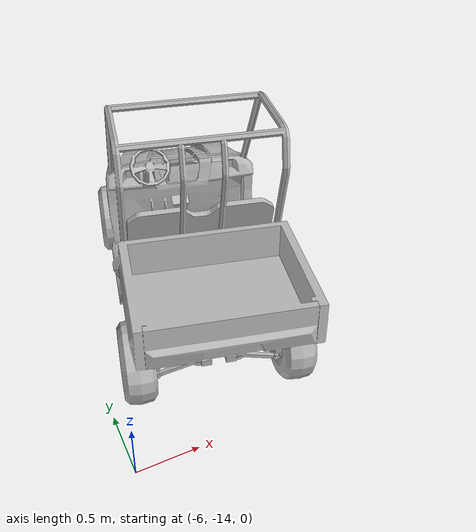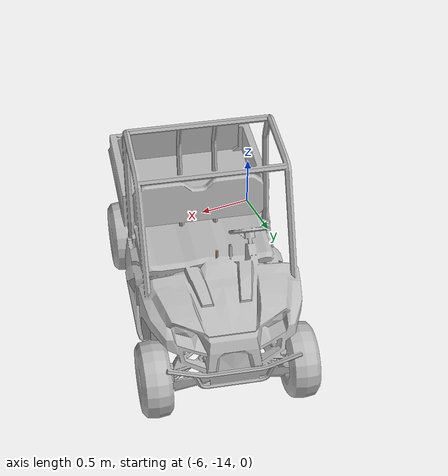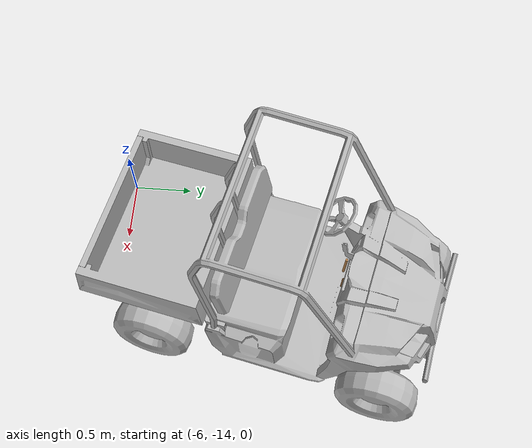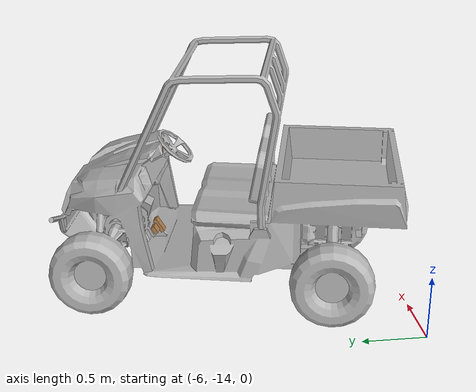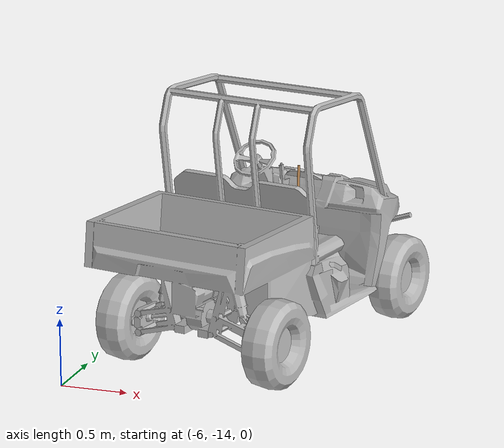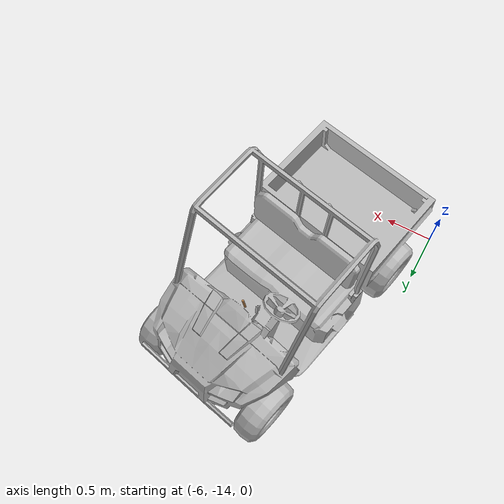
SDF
<sdf version="1.6">
 <world name="default">
  <model name="polaris_ranger_ev_clone_1_clone_clone_clone_clone_3">
   <static>true</static>
   <link name="chassis">
    <inertial>
     <mass>720</mass>
     <inertia><ixx>140</ixx><ixy>0</ixy><iyy>550</iyy><ixz>0</ixz><iyz>0</iyz><izz>550</izz></inertia>
    </inertial>
    <visual name="visual">
     <pose>0 0 0 0 0 -1.5708</pose>
     <geometry><mesh><uri>model://polaris_ranger_ev/meshes/polaris.dae</uri><scale>1 1 1</scale></mesh></geometry>
     <material>
      <script>
       <uri>model://polaris_ranger_ev/materials/scripts</uri>
       <uri>model://polaris_ranger_ev/materials/textures</uri>
       <name>Polaris/Diffuse</name>
      </script>
     </material>
    </visual>
    <collision name="chassis_bottom">
     <pose>0 0 0.35 0 -0 0</pose>
     <geometry><box><size>2 1 0.1</size></box></geometry>
    </collision>
    <collision name="cargo_bottom">
     <pose>-0.9 0 0.9 0 -0 0</pose>
     <geometry><box><size>0.9 1.2 0.01</size></box></geometry>
    </collision>
    <collision name="cargo_front">
     <pose>-0.45 0 1.025 0 -0 0</pose>
     <geometry><box><size>0.05 1.2 0.25</size></box></geometry>
    </collision>
    <collision name="cargo_back">
     <pose>-1.35 0 1.025 0 -0 0</pose>
     <geometry><box><size>0.05 1.2 0.25</size></box></geometry>
    </collision>
    <collision name="cargo_left">
     <pose>-0.9 0.6 1.025 0 -0 0</pose>
     <geometry><box><size>0.9 0.05 0.25</size></box></geometry>
    </collision>
    <collision name="cargo_right">
     <pose>-0.9 -0.6 1.025 0 -0 0</pose>
     <geometry><box><size>0.9 0.05 0.25</size></box></geometry>
    </collision>
    <collision name="seat">
     <pose>-0.1 0 0.625 0 -0 0</pose>
     <geometry><box><size>0.6 1 0.65</size></box></geometry>
    </collision>
    <collision name="seat_back">
     <pose>-0.3 0 1.125 0 -0.2 0</pose>
     <geometry><box><size>0.1 1 0.4</size></box></geometry>
    </collision>
    <collision name="engine">
     <pose>0.95 0 0.7 0 -0 0</pose>
     <geometry><box><size>0.58 1 0.8</size></box></geometry>
    </collision>
    <collision name="steering_column">
     <pose>0.525 0.3 1.025 0 -0.8 0</pose>
     <geometry><cylinder><radius>0.05</radius><length>0.45</length></cylinder></geometry>
    </collision>
   </link>
   <link name="rear_right_wheel">
    <pose>-0.85 -0.6 0.32 1.5708 -0 0</pose>
    <inertial>
     <mass>12</mass>
     <inertia><ixx>0.5</ixx><ixy>0</ixy><iyy>0.5</iyy><ixz>0</ixz><iyz>0</iyz><izz>1</izz></inertia>
    </inertial>
    <collision name="collision">
     <geometry><cylinder><radius>0.32</radius><length>0.23</length></cylinder></geometry>
     <surface>
      <friction><ode><mu>100000</mu><mu2>100000</mu2><slip1>0</slip1><slip2>0</slip2></ode></friction>
     </surface>
    </collision>
   </link>
   <joint name="rear_right_wheel_joint" type="revolute">
    <pose>0 0 -0.1 0 -0 0</pose>
    <child>rear_right_wheel</child>
    <parent>chassis</parent>
    <axis>
     <xyz>0 1 0</xyz>
     <use_parent_model_frame>1</use_parent_model_frame>
     <limit><lower>-1e+16</lower><upper>1e+16</upper></limit>
     <dynamics><spring_reference>0</spring_reference><spring_stiffness>0</spring_stiffness></dynamics>
    </axis>
    <physics><ode><limit><cfm>0</cfm><erp>0.9</erp></limit></ode></physics>
   </joint>
   <link name="rear_left_wheel">
    <pose>-0.85 0.6 0.32 1.5708 -0 0</pose>
    <inertial>
     <mass>12</mass>
     <inertia><ixx>0.5</ixx><ixy>0</ixy><iyy>0.5</iyy><ixz>0</ixz><iyz>0</iyz><izz>1</izz></inertia>
    </inertial>
    <collision name="collision">
     <geometry><cylinder><radius>0.32</radius><length>0.23</length></cylinder></geometry>
     <surface>
      <friction><ode><mu>100000</mu><mu2>100000</mu2><slip1>0</slip1><slip2>0</slip2></ode></friction>
     </surface>
    </collision>
   </link>
   <joint name="rear_left_wheel_joint" type="revolute">
    <child>rear_left_wheel</child>
    <parent>chassis</parent>
    <axis>
     <xyz>0 1 0</xyz>
     <use_parent_model_frame>1</use_parent_model_frame>
     <limit><lower>-1e+16</lower><upper>1e+16</upper></limit>
     <dynamics><spring_reference>0</spring_reference><spring_stiffness>0</spring_stiffness></dynamics>
    </axis>
    <physics><ode><limit><cfm>0</cfm><erp>0.9</erp></limit></ode></physics>
   </joint>
   <link name="front_right_wheel">
    <pose>1.03 -0.6 0.32 1.5708 -0 0</pose>
    <inertial>
     <mass>12</mass>
     <inertia><ixx>0.5</ixx><ixy>0</ixy><iyy>0.5</iyy><ixz>0</ixz><iyz>0</iyz><izz>1</izz></inertia>
    </inertial>
    <collision name="collision">
     <geometry><cylinder><radius>0.32</radius><length>0.23</length></cylinder></geometry>
     <surface>
      <friction><ode><mu>100000</mu><mu2>100000</mu2><slip1>0</slip1><slip2>0</slip2></ode></friction>
     </surface>
    </collision>
   </link>
   <link name="front_right_wheel_steering_block">
    <pose>1.03 -0.5 0.32 1.5708 -0 0</pose>
    <inertial>
     <mass>1</mass>
     <inertia><ixx>1</ixx><ixy>0</ixy><iyy>1</iyy><ixz>0</ixz><iyz>0</iyz><izz>1</izz></inertia>
    </inertial>
    <collision name="collision">
     <geometry><cylinder><radius>0.05</radius><length>0.01</length></cylinder></geometry>
    </collision>
   </link>
   <joint name="front_right_steering_joint" type="revolute">
    <child>front_right_wheel_steering_block</child>
    <parent>chassis</parent>
    <axis>
     <xyz>0 0 1</xyz>
     <limit><lower>-1</lower><upper>1</upper></limit>
     <use_parent_model_frame>1</use_parent_model_frame>
     <dynamics><spring_reference>0</spring_reference><spring_stiffness>0</spring_stiffness></dynamics>
    </axis>
    <physics><ode><limit><cfm>0</cfm><erp>0.9</erp></limit></ode></physics>
   </joint>
   <joint name="front_right_wheel_joint" type="revolute">
    <child>front_right_wheel</child>
    <parent>front_right_wheel_steering_block</parent>
    <axis>
     <xyz>0 1 0</xyz>
     <use_parent_model_frame>1</use_parent_model_frame>
     <limit><lower>-1e+16</lower><upper>1e+16</upper></limit>
     <dynamics><spring_reference>0</spring_reference><spring_stiffness>0</spring_stiffness></dynamics>
    </axis>
    <physics><ode><limit><cfm>0</cfm><erp>0.9</erp></limit></ode></physics>
   </joint>
   <link name="front_left_wheel">
    <pose>1.03 0.6 0.32 1.5708 -0 0</pose>
    <inertial>
     <mass>12</mass>
     <inertia><ixx>0.5</ixx><ixy>0</ixy><iyy>0.5</iyy><ixz>0</ixz><iyz>0</iyz><izz>1</izz></inertia>
    </inertial>
    <collision name="collision">
     <geometry><cylinder><radius>0.32</radius><length>0.23</length></cylinder></geometry>
     <surface>
      <friction><ode><mu>100000</mu><mu2>100000</mu2><slip1>0</slip1><slip2>0</slip2></ode></friction>
     </surface>
    </collision>
   </link>
   <link name="front_left_wheel_steering_block">
    <pose>1.03 0.5 0.32 1.5708 -0 0</pose>
    <inertial>
     <mass>1</mass>
     <inertia><ixx>1</ixx><ixy>0</ixy><iyy>1</iyy><ixz>0</ixz><iyz>0</iyz><izz>1</izz></inertia>
    </inertial>
    <collision name="collision">
     <geometry><cylinder><radius>0.05</radius><length>0.01</length></cylinder></geometry>
    </collision>
   </link>
   <joint name="front_left_steering_joint" type="revolute">
    <child>front_left_wheel_steering_block</child>
    <parent>chassis</parent>
    <axis>
     <xyz>0 0 1</xyz>
     <limit><lower>-1</lower><upper>1</upper></limit>
     <use_parent_model_frame>1</use_parent_model_frame>
     <dynamics><spring_reference>0</spring_reference><spring_stiffness>0</spring_stiffness></dynamics>
    </axis>
    <physics><ode><limit><cfm>0</cfm><erp>0.9</erp></limit></ode></physics>
   </joint>
   <joint name="front_left_wheel_joint" type="revolute">
    <child>front_left_wheel</child>
    <parent>front_left_wheel_steering_block</parent>
    <axis>
     <xyz>0 1 0</xyz>
     <use_parent_model_frame>1</use_parent_model_frame>
     <limit><lower>-1e+16</lower><upper>1e+16</upper></limit>
     <dynamics><spring_reference>0</spring_reference><spring_stiffness>0</spring_stiffness></dynamics>
    </axis>
    <physics><ode><limit><cfm>0</cfm><erp>0.9</erp></limit></ode></physics>
   </joint>
   <link name="gas_pedal">
    <pose>0.53 0.14 0.56 0 -1 0</pose>
    <gravity>0</gravity>
    <inertial>
     <mass>0.1</mass>
     <inertia><ixx>0.01</ixx><ixy>0</ixy><ixz>0</ixz><iyy>0.01</iyy><iyz>0</iyz><izz>0.01</izz></inertia>
    </inertial>
    <collision name="gas_pedal_collision"><geometry><box><size>0.12 0.07 0.03</size></box></geometry></collision>
    <visual name="gas_pedal_visual">
     <geometry><box><size>0.12 0.07 0.03</size></box></geometry>
     <material>
      <script><uri>file://media/materials/scripts/gazebo.material</uri><name>Gazebo/Wood</name></script>
      <ambient>0.2 0.2 0.2 1</ambient>
      <diffuse>0.2 0.2 0.2 1</diffuse>
      <specular>0.2 0.2 0.2 1</specular>
      <emissive>0.5 0.5 0.5 1</emissive>
     </material>
    </visual>
   </link>
   <link name="brake_pedal">
    <gravity>0</gravity>
    <pose>0.54 0.27 0.58 0 -1 0</pose>
    <inertial>
     <mass>0.1</mass>
     <inertia><ixx>0.01</ixx><ixy>0</ixy><ixz>0</ixz><iyy>0.01</iyy><iyz>0</iyz><izz>0.01</izz></inertia>
    </inertial>
    <collision name="brake_pedal_collision">
     <geometry><box><size>0.06 0.08 0.03</size></box></geometry>
    </collision>
    <visual name="brake_pedal_visual">
     <geometry><box><size>0.06 0.08 0.03</size></box></geometry>
     <material>
      <script><uri>file://media/materials/scripts/gazebo.material</uri><name>Gazebo/Wood</name></script>
      <ambient>0.2 0.2 0.2 1</ambient>
      <diffuse>0.2 0.2 0.2 1</diffuse>
      <specular>0.2 0.2 0.2 1</specular>
      <emissive>0.5 0.5 0.5 1</emissive>
     </material>
    </visual>
   </link>
   <link name="steering_wheel">
    <pose>0.37 0.3 1.2 0 -0.8 0</pose>
    <inertial>
     <mass>1</mass>
     <inertia><ixx>0.1</ixx><ixy>0</ixy><ixz>0</ixz><iyy>0.1</iyy><iyz>0</iyz><izz>1</izz></inertia>
    </inertial>
    <collision name="steering_wheel_post_left">
     <pose>0 0.08 0 1.5708 -0 0</pose>
     <geometry><cylinder><radius>0.02</radius><length>0.15</length></cylinder></geometry>
    </collision>
    <collision name="steering_wheel_post_right">
     <pose>0 -0.08 0 1.5708 -0 0</pose>
     <geometry><cylinder><radius>0.02</radius><length>0.15</length></cylinder></geometry>
    </collision>
    <collision name="steering_wheel_post_middle">
     <pose>-0.08 0 0 3.14159 1.57079 3.14159</pose>
     <geometry><cylinder><radius>0.02</radius><length>0.15</length></cylinder></geometry>
    </collision>
    <collision name="collision00">
     <pose>0.15 0 0 3.14159 1.57079 -1.57079</pose>
     <geometry><cylinder><length>0.105066</length><radius>0.01</radius></cylinder></geometry>
    </collision>
    <collision name="collision01">
     <pose>0.121353 0.088168 0 3.14159 1.57079 -0.942483</pose>
     <geometry><cylinder><length>0.105066</length><radius>0.01</radius></cylinder></geometry>
    </collision>
    <collision name="collision02">
     <pose>0.046353 0.142658 0 3.14159 1.57079 -0.314163</pose>
     <geometry><cylinder><length>0.105066</length><radius>0.01</radius></cylinder></geometry>
    </collision>
    <collision name="collision03">
     <pose>-0.046353 0.142658 0 3.14159 1.57079 0.314163</pose>
     <geometry><cylinder><length>0.105066</length><radius>0.01</radius></cylinder></geometry>
    </collision>
    <collision name="collision04">
     <pose>-0.121353 0.088168 0 -3.14159 1.57079 0.942483</pose>
     <geometry><cylinder><length>0.105066</length><radius>0.01</radius></cylinder></geometry>
    </collision>
    <collision name="collision05">
     <pose>-0.15 0 0 -3.14159 1.57079 1.57079</pose>
     <geometry><cylinder><length>0.105066</length><radius>0.01</radius></cylinder></geometry>
    </collision>
    <collision name="collision06">
     <pose>-0.121353 -0.088168 0 3.14159 1.57079 2.19912</pose>
     <geometry><cylinder><length>0.105066</length><radius>0.01</radius></cylinder></geometry>
    </collision>
    <collision name="collision07">
     <pose>-0.046353 -0.142658 0 -3.14159 1.57079 2.82743</pose>
     <geometry><cylinder><length>0.105066</length><radius>0.01</radius></cylinder></geometry>
    </collision>
    <collision name="collision08">
     <pose>0.046353 -0.142658 0 3.14159 1.57079 -2.82743</pose>
     <geometry><cylinder><length>0.105066</length><radius>0.01</radius></cylinder></geometry>
    </collision>
    <collision name="collision09">
     <pose>0.121353 -0.088168 0 -3.14159 1.57079 -2.19911</pose>
     <geometry><cylinder><length>0.105066</length><radius>0.01</radius></cylinder></geometry>
    </collision>
   </link>
   <link name="hand_brake">
    <pose>0.5 0 1.05 3.14159 -0.058407 3.14159</pose>
    <inertial>
     <mass>1</mass>
     <pose>0 0 -0.15 0 -0 0</pose>
     <inertia><ixx>0.1</ixx><ixy>0</ixy><ixz>0</ixz><iyy>0.1</iyy><iyz>0</iyz><izz>1</izz></inertia>
    </inertial>
    <collision name="hand_brake_collision">
     <pose>0 0 -0.1 0 -0 0</pose>
     <geometry><cylinder><radius>0.01</radius><length>0.2</length></cylinder></geometry>
    </collision>
    <visual name="hand_brake_visual">
     <pose>0 0 -0.1 0 -0 0</pose>
     <geometry><cylinder><radius>0.01</radius><length>0.2</length></cylinder></geometry>
     <material>
      <script><uri>file://media/materials/scripts/gazebo.material</uri><name>Gazebo/Wood</name></script>
     </material>
    </visual>
   </link>
   <joint name="gas_joint" type="prismatic">
    <parent>chassis</parent>
    <child>gas_pedal</child>
    <axis>
     <xyz>1 0 -1</xyz>
     <limit><lower>0</lower><upper>0.15</upper></limit>
     <use_parent_model_frame>1</use_parent_model_frame>
     <dynamics><spring_reference>0</spring_reference><spring_stiffness>0</spring_stiffness></dynamics>
    </axis>
   </joint>
   <joint name="brake_joint" type="prismatic">
    <parent>chassis</parent>
    <child>brake_pedal</child>
    <axis>
     <xyz>1 0 -0.6</xyz>
     <limit><lower>0</lower><upper>0.15</upper></limit>
     <use_parent_model_frame>1</use_parent_model_frame>
     <dynamics><spring_reference>0</spring_reference><spring_stiffness>0</spring_stiffness></dynamics>
    </axis>
   </joint>
   <joint name="steering_joint" type="revolute">
    <pose>0 0 0 1.5708 -0.8 0</pose>
    <parent>chassis</parent>
    <child>steering_wheel</child>
    <axis>
     <xyz>-1 0 1.023</xyz>
     <limit><lower>-7.853</lower><upper>7.853</upper></limit>
     <use_parent_model_frame>1</use_parent_model_frame>
     <dynamics><spring_reference>0</spring_reference><spring_stiffness>0</spring_stiffness></dynamics>
    </axis>
   </joint>
   <joint name="hand_brake_joint" type="revolute">
    <parent>chassis</parent>
    <child>hand_brake</child>
    <axis>
     <xyz>0 -1 0</xyz>
     <limit><lower>0</lower><upper>0.6</upper></limit>
     <use_parent_model_frame>1</use_parent_model_frame>
     <dynamics><spring_reference>0</spring_reference><spring_stiffness>0</spring_stiffness></dynamics>
    </axis>
   </joint>
   <pose>-4.92802 -12.6011 -5.2e-05 0 4.8e-05 1.34758</pose>
  </model>
 </world>
</sdf>
